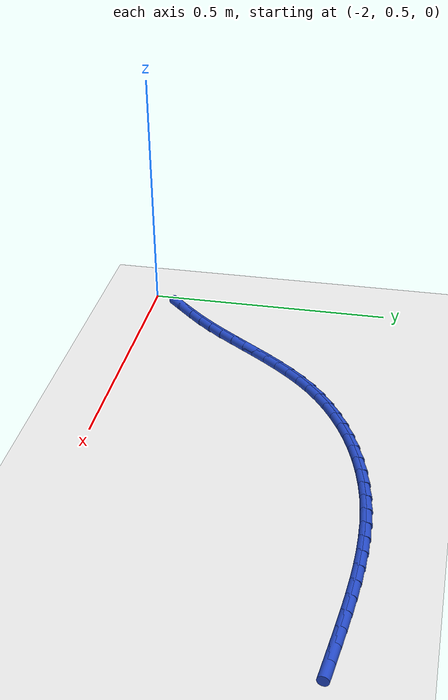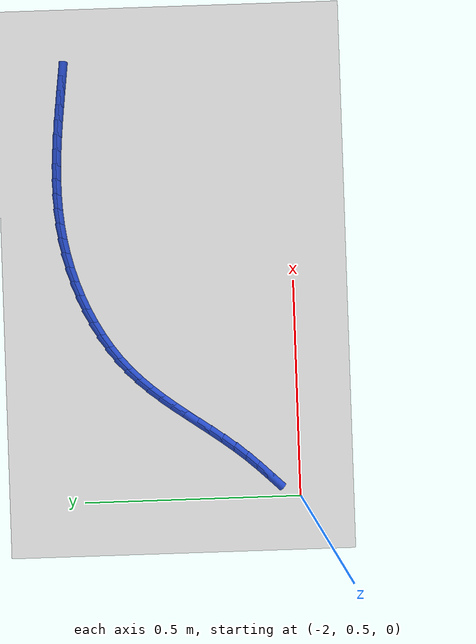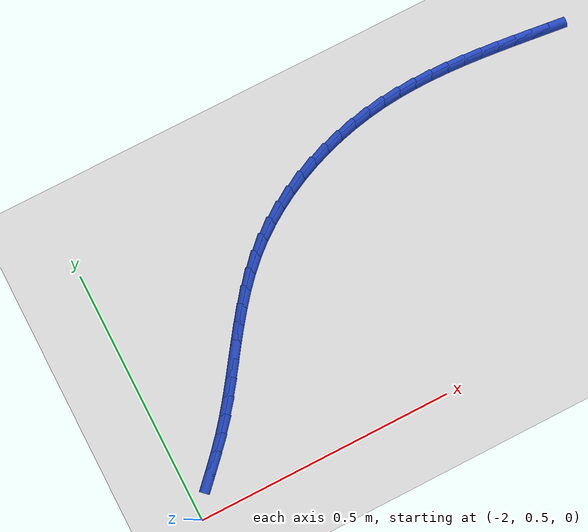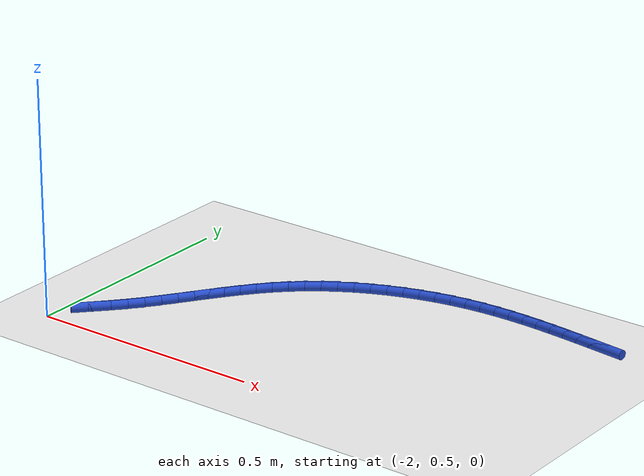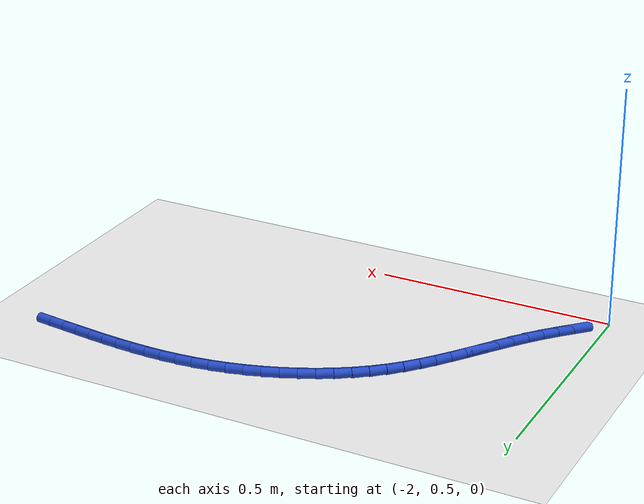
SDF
<sdf version="1.6">
 <world name="default">
  <model name="ground_plane">
   <static>1</static>
   <link name="link">
    <collision name="collision">
     <geometry><plane><normal>0 0 1</normal><size>100 100</size></plane></geometry>
     <surface><friction><ode><mu>100</mu><mu2>50</mu2></ode></friction></surface>
    </collision>
    <visual name="visual">
     <cast_shadows>0</cast_shadows>
     <geometry><plane><normal>0 0 1</normal><size>100 100</size></plane></geometry>
     <material>
      <script><uri>file://media/materials/scripts/gazebo.material</uri><name>Gazebo/WhiteGlow</name></script>
     </material>
    </visual>
   </link>
  </model>
  <model name="line">
   <link name="link_49">
    <pose>-1.0189916384101403 1.019753696951363 0.01 0 1.57 -0.11638283449637628</pose>
    <collision name="collision">
     <geometry><cylinder><radius>0.01</radius><length>0.08</length></cylinder></geometry>
    </collision>
    <visual name="visual">
     <material>
      <script><name>Gazebo/Blue</name><uri>file://media/materials/scripts/gazebo.material</uri></script>
     </material>
     <geometry><cylinder><radius>0.01</radius><length>0.08</length></cylinder></geometry>
    </visual>
   </link>
   <link name="link_50">
    <pose>-1.0522493299442428 1.0236418923896087 0.01 0 1.57 -0.11383761230035552</pose>
    <collision name="collision">
     <geometry><cylinder><radius>0.01</radius><length>0.08</length></cylinder></geometry>
    </collision>
    <visual name="visual">
     <material>
      <script><name>Gazebo/Blue</name><uri>file://media/materials/scripts/gazebo.material</uri></script>
     </material>
     <geometry><cylinder><radius>0.01</radius><length>0.08</length></cylinder></geometry>
    </visual>
   </link>
   <link name="link_51">
    <pose>-1.0856283176021684 1.027458175980729 0.01 0 1.57 -0.10613242274218272</pose>
    <collision name="collision">
     <geometry><cylinder><radius>0.01</radius><length>0.08</length></cylinder></geometry>
    </collision>
    <visual name="visual">
     <material>
      <script><name>Gazebo/Blue</name><uri>file://media/materials/scripts/gazebo.material</uri></script>
     </material>
     <geometry><cylinder><radius>0.01</radius><length>0.08</length></cylinder></geometry>
    </visual>
   </link>
   <link name="link_52">
    <pose>-1.1191149964220675 1.0310256030105693 0.01 0 1.57 -0.09324876672268698</pose>
    <collision name="collision">
     <geometry><cylinder><radius>0.01</radius><length>0.08</length></cylinder></geometry>
    </collision>
    <visual name="visual">
     <material>
      <script><name>Gazebo/Blue</name><uri>file://media/materials/scripts/gazebo.material</uri></script>
     </material>
     <geometry><cylinder><radius>0.01</radius><length>0.08</length></cylinder></geometry>
    </visual>
   </link>
   <link name="link_53">
    <pose>-1.1526933623246747 1.0341658513345873 0.01 0 1.57 -0.0751758197110959</pose>
    <collision name="collision">
     <geometry><cylinder><radius>0.01</radius><length>0.08</length></cylinder></geometry>
    </collision>
    <visual name="visual">
     <material>
      <script><name>Gazebo/Blue</name><uri>file://media/materials/scripts/gazebo.material</uri></script>
     </material>
     <geometry><cylinder><radius>0.01</radius><length>0.08</length></cylinder></geometry>
    </visual>
   </link>
   <link name="link_54">
    <pose>-1.186347411230725 1.0367005988082412 0.01 0 1.57 -0.05188844149849733</pose>
    <collision name="collision">
     <geometry><cylinder><radius>0.01</radius><length>0.08</length></cylinder></geometry>
    </collision>
    <visual name="visual">
     <material>
      <script><name>Gazebo/Blue</name><uri>file://media/materials/scripts/gazebo.material</uri></script>
     </material>
     <geometry><cylinder><radius>0.01</radius><length>0.08</length></cylinder></geometry>
    </visual>
   </link>
   <link name="link_55">
    <pose>-1.2200611390609535 1.0384515232869886 0.01 0 1.57 -0.02336186354582435</pose>
    <collision name="collision">
     <geometry><cylinder><radius>0.01</radius><length>0.08</length></cylinder></geometry>
    </collision>
    <visual name="visual">
     <material>
      <script><name>Gazebo/Blue</name><uri>file://media/materials/scripts/gazebo.material</uri></script>
     </material>
     <geometry><cylinder><radius>0.01</radius><length>0.08</length></cylinder></geometry>
    </visual>
   </link>
   <link name="link_56">
    <pose>-1.2538185417360947 1.0392403026262882 0.01 0 1.57 0.010409189823853237</pose>
    <collision name="collision">
     <geometry><cylinder><radius>0.01</radius><length>0.08</length></cylinder></geometry>
    </collision>
    <visual name="visual">
     <material>
      <script><name>Gazebo/Blue</name><uri>file://media/materials/scripts/gazebo.material</uri></script>
     </material>
     <geometry><cylinder><radius>0.01</radius><length>0.08</length></cylinder></geometry>
    </visual>
   </link>
   <link name="link_57">
    <pose>-1.287603615176884 1.0388886146815977 0.01 0 1.57 0.049386982493541724</pose>
    <collision name="collision">
     <geometry><cylinder><radius>0.01</radius><length>0.08</length></cylinder></geometry>
    </collision>
    <visual name="visual">
     <material>
      <script><name>Gazebo/Blue</name><uri>file://media/materials/scripts/gazebo.material</uri></script>
     </material>
     <geometry><cylinder><radius>0.01</radius><length>0.08</length></cylinder></geometry>
    </visual>
   </link>
   <link name="link_58">
    <pose>-1.3214003553040552 1.037218137308375 0.01 0 1.57 0.09346361546736663</pose>
    <collision name="collision">
     <geometry><cylinder><radius>0.01</radius><length>0.08</length></cylinder></geometry>
    </collision>
    <visual name="visual">
     <material>
      <script><name>Gazebo/Blue</name><uri>file://media/materials/scripts/gazebo.material</uri></script>
     </material>
     <geometry><cylinder><radius>0.01</radius><length>0.08</length></cylinder></geometry>
    </visual>
   </link>
   <link name="link_59">
    <pose>-1.355192758038344 1.0340505483620785 0.01 0 1.57 0.1423576001768085</pose>
    <collision name="collision">
     <geometry><cylinder><radius>0.01</radius><length>0.08</length></cylinder></geometry>
    </collision>
    <visual name="visual">
     <material>
      <script><name>Gazebo/Blue</name><uri>file://media/materials/scripts/gazebo.material</uri></script>
     </material>
     <geometry><cylinder><radius>0.01</radius><length>0.08</length></cylinder></geometry>
    </visual>
   </link>
   <link name="link_60">
    <pose>-1.388962610846772 1.0292104126745438 0.01 0 1.57 0.19366673334273485</pose>
    <collision name="collision">
     <geometry><cylinder><radius>0.01</radius><length>0.08</length></cylinder></geometry>
    </collision>
    <visual name="visual">
     <material>
      <script><name>Gazebo/Blue</name><uri>file://media/materials/scripts/gazebo.material</uri></script>
     </material>
     <geometry><cylinder><radius>0.01</radius><length>0.08</length></cylinder></geometry>
    </visual>
   </link>
   <link name="link_61">
    <pose>-1.4226259983181357 1.022608184429128 0.01 0 1.57 0.2451497310486619</pose>
    <collision name="collision">
     <geometry><cylinder><radius>0.01</radius><length>0.08</length></cylinder></geometry>
    </collision>
    <visual name="visual">
     <material>
      <script><name>Gazebo/Blue</name><uri>file://media/materials/scripts/gazebo.material</uri></script>
     </material>
     <geometry><cylinder><radius>0.01</radius><length>0.08</length></cylinder></geometry>
    </visual>
   </link>
   <link name="link_62">
    <pose>-1.4560237672498184 1.014252671569169 0.01 0 1.57 0.29712200238520126</pose>
    <collision name="collision">
     <geometry><cylinder><radius>0.01</radius><length>0.08</length></cylinder></geometry>
    </collision>
    <visual name="visual">
     <material>
      <script><name>Gazebo/Blue</name><uri>file://media/materials/scripts/gazebo.material</uri></script>
     </material>
     <geometry><cylinder><radius>0.01</radius><length>0.08</length></cylinder></geometry>
    </visual>
   </link>
   <link name="link_63">
    <pose>-1.4889926380186396 1.004158076255058 0.01 0 1.57 0.3500288925562885</pose>
    <collision name="collision">
     <geometry><cylinder><radius>0.01</radius><length>0.08</length></cylinder></geometry>
    </collision>
    <visual name="visual">
     <material>
      <script><name>Gazebo/Blue</name><uri>file://media/materials/scripts/gazebo.material</uri></script>
     </material>
     <geometry><cylinder><radius>0.01</radius><length>0.08</length></cylinder></geometry>
    </visual>
   </link>
   <link name="link_64">
    <pose>-1.5213693310014196 0.9923386006471859 0.01 0 1.57 0.4043090916482738</pose>
    <collision name="collision">
     <geometry><cylinder><radius>0.01</radius><length>0.08</length></cylinder></geometry>
    </collision>
    <visual name="visual">
     <material>
      <script><name>Gazebo/Blue</name><uri>file://media/materials/scripts/gazebo.material</uri></script>
     </material>
     <geometry><cylinder><radius>0.01</radius><length>0.08</length></cylinder></geometry>
    </visual>
   </link>
   <link name="link_65">
    <pose>-1.5529905665749777 0.978808446905944 0.01 0 1.57 0.46039518902360194</pose>
    <collision name="collision">
     <geometry><cylinder><radius>0.01</radius><length>0.08</length></cylinder></geometry>
    </collision>
    <visual name="visual">
     <material>
      <script><name>Gazebo/Blue</name><uri>file://media/materials/scripts/gazebo.material</uri></script>
     </material>
     <geometry><cylinder><radius>0.01</radius><length>0.08</length></cylinder></geometry>
    </visual>
   </link>
   <link name="link_66">
    <pose>-1.5836930651161345 0.9635818171917236 0.01 0 1.57 0.518711161567841</pose>
    <collision name="collision">
     <geometry><cylinder><radius>0.01</radius><length>0.08</length></cylinder></geometry>
    </collision>
    <visual name="visual">
     <material>
      <script><name>Gazebo/Blue</name><uri>file://media/materials/scripts/gazebo.material</uri></script>
     </material>
     <geometry><cylinder><radius>0.01</radius><length>0.08</length></cylinder></geometry>
    </visual>
   </link>
   <link name="link_67">
    <pose>-1.6133135470017104 0.9466729136649163 0.01 0 1.57 0.5796657850404748</pose>
    <collision name="collision">
     <geometry><cylinder><radius>0.01</radius><length>0.08</length></cylinder></geometry>
    </collision>
    <visual name="visual">
     <material>
      <script><name>Gazebo/Blue</name><uri>file://media/materials/scripts/gazebo.material</uri></script>
     </material>
     <geometry><cylinder><radius>0.01</radius><length>0.08</length></cylinder></geometry>
    </visual>
   </link>
   <link name="link_68">
    <pose>-1.6416887326085237 0.9280959384859125 0.01 0 1.57 0.6436408199464149</pose>
    <collision name="collision">
     <geometry><cylinder><radius>0.01</radius><length>0.08</length></cylinder></geometry>
    </collision>
    <visual name="visual">
     <material>
      <script><name>Gazebo/Blue</name><uri>file://media/materials/scripts/gazebo.material</uri></script>
     </material>
     <geometry><cylinder><radius>0.01</radius><length>0.08</length></cylinder></geometry>
    </visual>
   </link>
   <link name="link_69">
    <pose>-1.6686553423133956 0.907865093815104 0.01 0 1.57 0.7109728405221866</pose>
    <collision name="collision">
     <geometry><cylinder><radius>0.01</radius><length>0.08</length></cylinder></geometry>
    </collision>
    <visual name="visual">
     <material>
      <script><name>Gazebo/Blue</name><uri>file://media/materials/scripts/gazebo.material</uri></script>
     </material>
     <geometry><cylinder><radius>0.01</radius><length>0.08</length></cylinder></geometry>
    </visual>
   </link>
   <link name="link_70">
    <pose>-1.6940500964931466 0.8859945818128819 0.01 0 1.57 0.7796283577404893</pose>
    <collision name="collision">
     <geometry><cylinder><radius>0.01</radius><length>0.08</length></cylinder></geometry>
    </collision>
    <visual name="visual">
     <material>
      <script><name>Gazebo/Blue</name><uri>file://media/materials/scripts/gazebo.material</uri></script>
     </material>
     <geometry><cylinder><radius>0.01</radius><length>0.08</length></cylinder></geometry>
    </visual>
   </link>
   <link name="link_71">
    <pose>-1.7177804052226917 0.8625365436952807 0.01 0 1.57 0.8394597505369964</pose>
    <collision name="collision">
     <geometry><cylinder><radius>0.01</radius><length>0.08</length></cylinder></geometry>
    </collision>
    <visual name="visual">
     <material>
      <script><name>Gazebo/Blue</name><uri>file://media/materials/scripts/gazebo.material</uri></script>
     </material>
     <geometry><cylinder><radius>0.01</radius><length>0.08</length></cylinder></geometry>
    </visual>
   </link>
   <link name="link_72">
    <pose>-1.7400601123426067 0.837707583223785 0.01 0 1.57 0.8873023868798748</pose>
    <collision name="collision">
     <geometry><cylinder><radius>0.01</radius><length>0.08</length></cylinder></geometry>
    </collision>
    <visual name="visual">
     <material>
      <script><name>Gazebo/Blue</name><uri>file://media/materials/scripts/gazebo.material</uri></script>
     </material>
     <geometry><cylinder><radius>0.01</radius><length>0.08</length></cylinder></geometry>
    </visual>
   </link>
   <link name="link_73">
    <pose>-1.7611860761815306 0.8117688579119363 0.01 0 1.57 0.9230422042411489</pose>
    <collision name="collision">
     <geometry><cylinder><radius>0.01</radius><length>0.08</length></cylinder></geometry>
    </collision>
    <visual name="visual">
     <material>
      <script><name>Gazebo/Blue</name><uri>file://media/materials/scripts/gazebo.material</uri></script>
     </material>
     <geometry><cylinder><radius>0.01</radius><length>0.08</length></cylinder></geometry>
    </visual>
   </link>
   <link name="link_74">
    <pose>-1.781455156542857 0.784981526064774 0.01 0 1.57 0.9467921590086865</pose>
    <collision name="collision">
     <geometry><cylinder><radius>0.01</radius><length>0.08</length></cylinder></geometry>
    </collision>
    <visual name="visual">
     <material>
      <script><name>Gazebo/Blue</name><uri>file://media/materials/scripts/gazebo.material</uri></script>
     </material>
     <geometry><cylinder><radius>0.01</radius><length>0.08</length></cylinder></geometry>
    </visual>
   </link>
   <link name="link_75">
    <pose>-1.8011642132299828 0.7576067459873387 0.01 0 1.57 0.9587355883283306</pose>
    <collision name="collision">
     <geometry><cylinder><radius>0.01</radius><length>0.08</length></cylinder></geometry>
    </collision>
    <visual name="visual">
     <material>
      <script><name>Gazebo/Blue</name><uri>file://media/materials/scripts/gazebo.material</uri></script>
     </material>
     <geometry><cylinder><radius>0.01</radius><length>0.08</length></cylinder></geometry>
    </visual>
   </link>
   <link name="link_76">
    <pose>-1.8206101060463031 0.7299056759846706 0.01 0 1.57 0.9590257827410408</pose>
    <collision name="collision">
     <geometry><cylinder><radius>0.01</radius><length>0.08</length></cylinder></geometry>
    </collision>
    <visual name="visual">
     <material>
      <script><name>Gazebo/Blue</name><uri>file://media/materials/scripts/gazebo.material</uri></script>
     </material>
     <geometry><cylinder><radius>0.01</radius><length>0.08</length></cylinder></geometry>
    </visual>
   </link>
   <link name="link_77">
    <pose>-1.8400896947952132 0.7021394743618098 0.01 0 1.57 0.9477385642727537</pose>
    <collision name="collision">
     <geometry><cylinder><radius>0.01</radius><length>0.08</length></cylinder></geometry>
    </collision>
    <visual name="visual">
     <material>
      <script><name>Gazebo/Blue</name><uri>file://media/materials/scripts/gazebo.material</uri></script>
     </material>
     <geometry><cylinder><radius>0.01</radius><length>0.08</length></cylinder></geometry>
    </visual>
   </link>
   <link name="link_78">
    <pose>-1.8598998392801098 0.6745692994237971 0.01 0 1.57 0.9248726319525674</pose>
    <collision name="collision">
     <geometry><cylinder><radius>0.01</radius><length>0.08</length></cylinder></geometry>
    </collision>
    <visual name="visual">
     <material>
      <script><name>Gazebo/Blue</name><uri>file://media/materials/scripts/gazebo.material</uri></script>
     </material>
     <geometry><cylinder><radius>0.01</radius><length>0.08</length></cylinder></geometry>
    </visual>
   </link>
   <link name="link_79">
    <pose>-1.8803373993043864 0.6474563094756718 0.01 0 1.57 0.8903954941955885</pose>
    <collision name="collision">
     <geometry><cylinder><radius>0.01</radius><length>0.08</length></cylinder></geometry>
    </collision>
    <visual name="visual">
     <material>
      <script><name>Gazebo/Blue</name><uri>file://media/materials/scripts/gazebo.material</uri></script>
     </material>
     <geometry><cylinder><radius>0.01</radius><length>0.08</length></cylinder></geometry>
    </visual>
   </link>
   <link name="link_80">
    <pose>-1.9016992346141848 0.621061662778124 0.01 0 1.57 0.8492826102506627</pose>
    <collision name="collision">
     <geometry><cylinder><radius>0.01</radius><length>0.08</length></cylinder></geometry>
    </collision>
    <visual name="visual">
     <material>
      <script><name>Gazebo/Blue</name><uri>file://media/materials/scripts/gazebo.material</uri></script>
     </material>
     <geometry><cylinder><radius>0.01</radius><length>0.08</length></cylinder></geometry>
    </visual>
   </link>
   <link name="link_81">
    <pose>-1.924148984197663 0.5955433226467024 0.01 0 1.57 0.8208976077200659</pose>
    <collision name="collision">
     <geometry><cylinder><radius>0.01</radius><length>0.08</length></cylinder></geometry>
    </collision>
    <visual name="visual">
     <material>
      <script><name>Gazebo/Blue</name><uri>file://media/materials/scripts/gazebo.material</uri></script>
     </material>
     <geometry><cylinder><radius>0.01</radius><length>0.08</length></cylinder></geometry>
    </visual>
   </link>
   <link name="link_82">
    <pose>-1.9473294215567722 0.5706557816008959 0.01 0 1.57 0.8098422841125373</pose>
    <collision name="collision">
     <geometry><cylinder><radius>0.01</radius><length>0.08</length></cylinder></geometry>
    </collision>
    <visual name="visual">
     <material>
      <script><name>Gazebo/Blue</name><uri>file://media/materials/scripts/gazebo.material</uri></script>
     </material>
     <geometry><cylinder><radius>0.01</radius><length>0.08</length></cylinder></geometry>
    </visual>
   </link>
  </model>
 </world>
</sdf>
